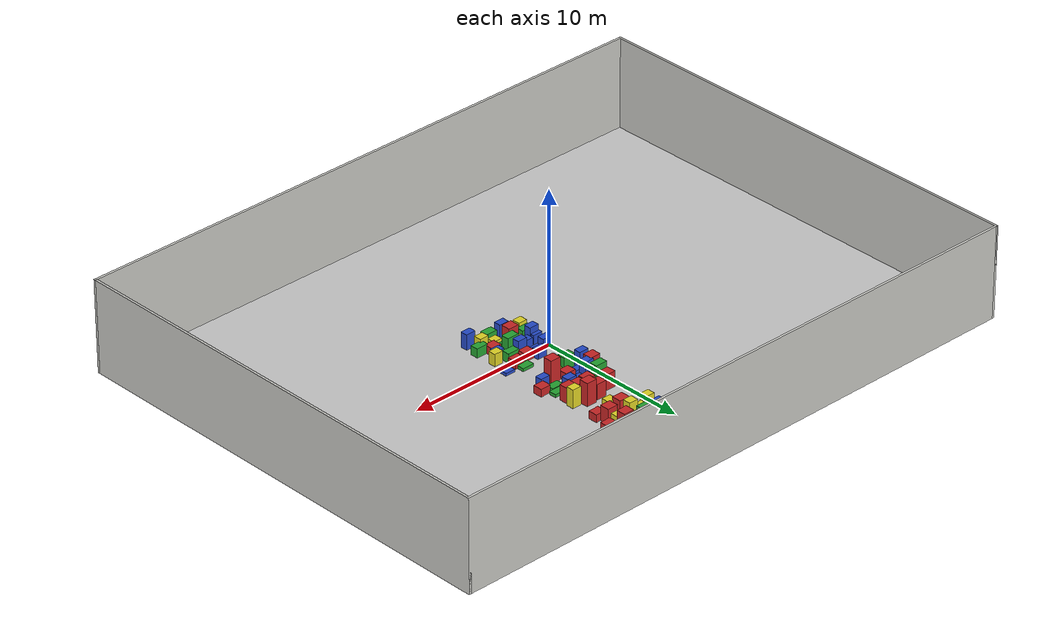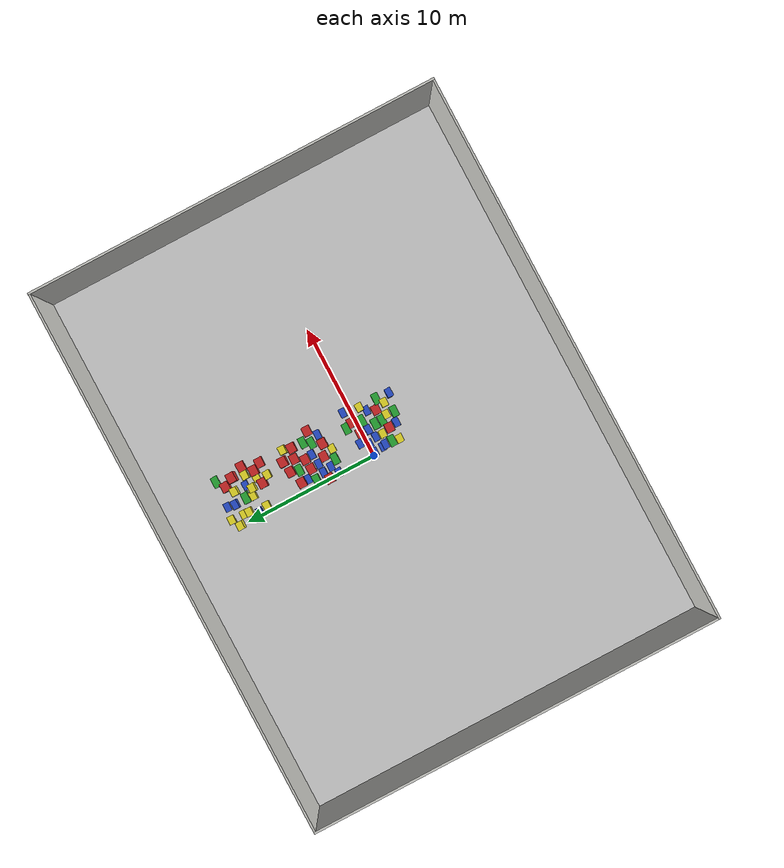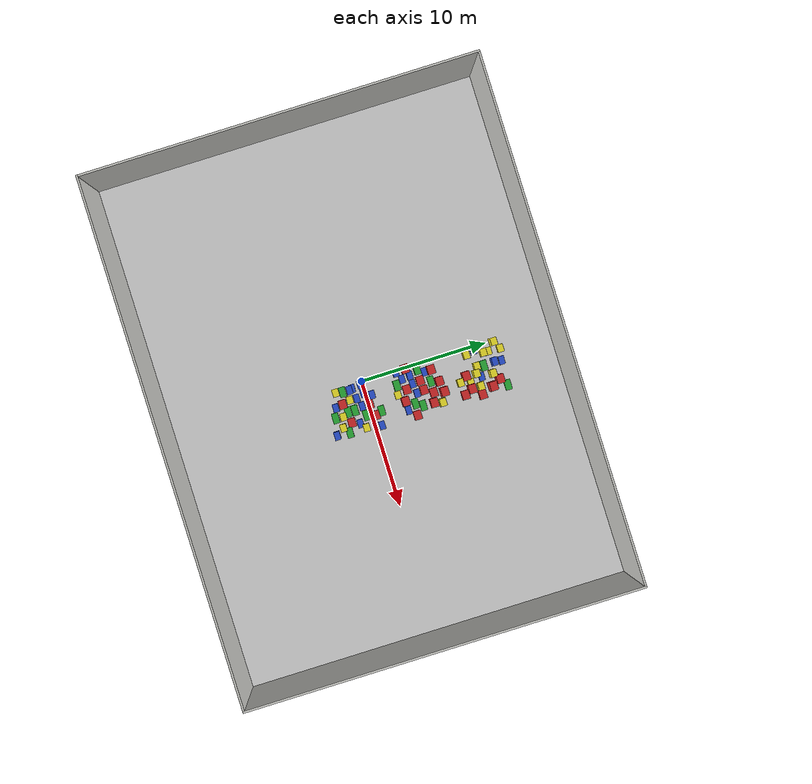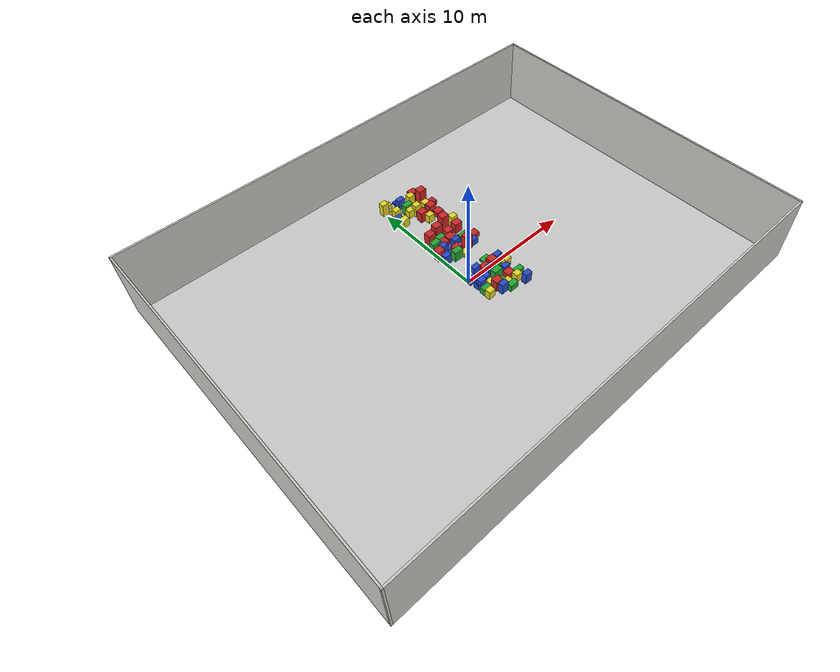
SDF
<sdf version="1.6">
 <world name="default">
  <model name="factory_floor">
   <static>1</static>
   <link name="link">
    <collision name="collision">
     <geometry><plane><normal>0 0 1</normal><size>40 30</size></plane></geometry>
     <surface><friction><ode><mu>100</mu><mu2>50</mu2></ode></friction></surface>
    </collision>
    <visual name="visual">
     <cast_shadows>0</cast_shadows>
     <geometry><plane><normal>0 0 1</normal><size>40 30</size></plane></geometry>
     <material>
      <script>
       <uri>model://factory_floor/materials/scripts/factory_floor.material</uri>
       <name>FactoryFloor/Image</name>
      </script>
     </material>
    </visual>
   </link>
  </model>
  <model name="factory_outer_frame">
   <link name="Wall_0">
    <collision name="Wall_0_Collision">
     <geometry><box><size>30.15 0.15 6</size></box></geometry>
     <pose>0 0 3 0 -0 0</pose>
    </collision>
    <visual name="Wall_0_Visual">
     <pose>0 0 3 0 -0 0</pose>
     <geometry><box><size>30.15 0.15 6</size></box></geometry>
     <material>
      <script><uri>file://media/materials/scripts/gazebo.material</uri><name>Gazebo/CeilingTiled</name></script>
      <ambient>1 1 1 1</ambient>
     </material>
    </visual>
    <pose>20 0 0 0 0 -1.5708</pose>
   </link>
   <link name="Wall_1">
    <collision name="Wall_1_Collision">
     <geometry><box><size>40.15 0.15 6</size></box></geometry>
     <pose>0 0 3 0 -0 0</pose>
    </collision>
    <visual name="Wall_1_Visual">
     <pose>0 0 3 0 -0 0</pose>
     <geometry><box><size>40.15 0.15 6</size></box></geometry>
     <material>
      <script><uri>file://media/materials/scripts/gazebo.material</uri><name>Gazebo/CeilingTiled</name></script>
      <ambient>1 1 1 1</ambient>
     </material>
    </visual>
    <pose>0 -15 0 0 -0 3.14159</pose>
   </link>
   <link name="Wall_2">
    <collision name="Wall_2_Collision">
     <geometry><box><size>30.15 0.15 6</size></box></geometry>
     <pose>0 0 3 0 -0 0</pose>
    </collision>
    <visual name="Wall_2_Visual">
     <pose>0 0 3 0 -0 0</pose>
     <geometry><box><size>30.15 0.15 6</size></box></geometry>
     <material>
      <script><uri>file://media/materials/scripts/gazebo.material</uri><name>Gazebo/CeilingTiled</name></script>
      <ambient>1 1 1 1</ambient>
     </material>
    </visual>
    <pose>-20 0 0 0 -0 1.5708</pose>
   </link>
   <link name="Wall_3">
    <collision name="Wall_3_Collision">
     <geometry><box><size>40.15 0.15 6</size></box></geometry>
     <pose>0 0 3 0 -0 0</pose>
    </collision>
    <visual name="Wall_3_Visual">
     <pose>0 0 3 0 -0 0</pose>
     <geometry><box><size>40.15 0.15 6</size></box></geometry>
     <material>
      <script><uri>file://media/materials/scripts/gazebo.material</uri><name>Gazebo/CeilingTiled</name></script>
      <ambient>1 1 1 1</ambient>
     </material>
    </visual>
    <pose>0 15 0 0 -0 0</pose>
   </link>
   <static>1</static>
  </model>
  <model name="baggage_A_0.5_clone_4">
   <pose>3.35624 7.32491 0.250063 0 -0 0</pose>
   <static>1</static>
   <link name="baggage_A_0.5::link">
    <collision name="collision"><geometry><box><size>0.7 0.6 0.5</size></box></geometry></collision>
    <visual name="visual">
     <geometry><box><size>0.7 0.6 0.5</size></box></geometry>
     <material>
      <script><uri>file://media/materials/scripts/gazebo.material</uri><name>Gazebo/Red</name></script>
     </material>
    </visual>
   </link>
  </model>
  <model name="baggage_A_0.5_clone_13">
   <pose>2.43636 5.05285 0.250044 0 -0 0</pose>
   <static>1</static>
   <link name="baggage_A_0.5::link">
    <collision name="collision"><geometry><box><size>0.7 0.6 0.5</size></box></geometry></collision>
    <visual name="visual">
     <geometry><box><size>0.7 0.6 0.5</size></box></geometry>
     <material>
      <script><uri>file://media/materials/scripts/gazebo.material</uri><name>Gazebo/Red</name></script>
     </material>
    </visual>
   </link>
  </model>
  <model name="baggage_A_0.5_clone_17">
   <pose>1.86196 0.098093 0.249707 0 -0 0</pose>
   <static>1</static>
   <link name="baggage_A_0.5::link">
    <collision name="collision"><geometry><box><size>0.7 0.6 0.5</size></box></geometry></collision>
    <visual name="visual">
     <geometry><box><size>0.7 0.6 0.5</size></box></geometry>
     <material>
      <script><uri>file://media/materials/scripts/gazebo.material</uri><name>Gazebo/Red</name></script>
     </material>
    </visual>
   </link>
  </model>
  <model name="baggage_A_0.5_clone_22">
   <pose>2.04116 4.39802 0.24978 0 -0 0</pose>
   <static>1</static>
   <link name="baggage_A_0.5::link">
    <collision name="collision"><geometry><box><size>0.7 0.6 0.5</size></box></geometry></collision>
    <visual name="visual">
     <geometry><box><size>0.7 0.6 0.5</size></box></geometry>
     <material>
      <script><uri>file://media/materials/scripts/gazebo.material</uri><name>Gazebo/Red</name></script>
     </material>
    </visual>
   </link>
  </model>
  <model name="baggage_A_0.5_clone_29">
   <pose>2.80038 -1.61448 0.249803 0 -0 0</pose>
   <static>1</static>
   <link name="baggage_A_0.5::link">
    <collision name="collision"><geometry><box><size>0.7 0.6 0.5</size></box></geometry></collision>
    <visual name="visual">
     <geometry><box><size>0.7 0.6 0.5</size></box></geometry>
     <material>
      <script><uri>file://media/materials/scripts/gazebo.material</uri><name>Gazebo/Red</name></script>
     </material>
    </visual>
   </link>
  </model>
  <model name="baggage_A_0.5_clone_36">
   <pose>3.74295 3.35884 0.250092 0 -0 0</pose>
   <static>1</static>
   <link name="baggage_A_0.5::link">
    <collision name="collision"><geometry><box><size>0.7 0.6 0.5</size></box></geometry></collision>
    <visual name="visual">
     <geometry><box><size>0.7 0.6 0.5</size></box></geometry>
     <material>
      <script><uri>file://media/materials/scripts/gazebo.material</uri><name>Gazebo/Red</name></script>
     </material>
    </visual>
   </link>
  </model>
  <model name="baggage_A_0.5_clone_39">
   <pose>3.70914 8.5983 0.249886 0 -0 0</pose>
   <static>1</static>
   <link name="baggage_A_0.5::link">
    <collision name="collision"><geometry><box><size>0.7 0.6 0.5</size></box></geometry></collision>
    <visual name="visual">
     <geometry><box><size>0.7 0.6 0.5</size></box></geometry>
     <material>
      <script><uri>file://media/materials/scripts/gazebo.material</uri><name>Gazebo/Red</name></script>
     </material>
    </visual>
   </link>
  </model>
  <model name="baggage_A_0.5_clone_46">
   <pose>2.79553 0.301072 0.250117 0 -0 0</pose>
   <static>1</static>
   <link name="baggage_A_0.5::link">
    <collision name="collision"><geometry><box><size>0.7 0.6 0.5</size></box></geometry></collision>
    <visual name="visual">
     <geometry><box><size>0.7 0.6 0.5</size></box></geometry>
     <material>
      <script><uri>file://media/materials/scripts/gazebo.material</uri><name>Gazebo/Red</name></script>
     </material>
    </visual>
   </link>
  </model>
  <model name="baggage_A_0.5_clone_47">
   <pose>1.26699 4.31966 0.249949 0 -0 0</pose>
   <static>1</static>
   <link name="baggage_A_0.5::link">
    <collision name="collision"><geometry><box><size>0.7 0.6 0.5</size></box></geometry></collision>
    <visual name="visual">
     <geometry><box><size>0.7 0.6 0.5</size></box></geometry>
     <material>
      <script><uri>file://media/materials/scripts/gazebo.material</uri><name>Gazebo/Red</name></script>
     </material>
    </visual>
   </link>
  </model>
  <model name="baggage_A_0.5_clone_48">
   <pose>1.62736 3.14012 0.249833 0 -0 0</pose>
   <static>1</static>
   <link name="baggage_A_0.5::link">
    <collision name="collision"><geometry><box><size>0.7 0.6 0.5</size></box></geometry></collision>
    <visual name="visual">
     <geometry><box><size>0.7 0.6 0.5</size></box></geometry>
     <material>
      <script><uri>file://media/materials/scripts/gazebo.material</uri><name>Gazebo/Red</name></script>
     </material>
    </visual>
   </link>
  </model>
  <model name="baggage_A_1.0_clone_5">
   <pose>0.71214 5.33384 0.499935 0 -0 0</pose>
   <static>1</static>
   <link name="baggage_A_1.0::link">
    <collision name="collision"><geometry><box><size>0.7 0.6 1</size></box></geometry></collision>
    <visual name="visual">
     <geometry><box><size>0.7 0.6 1</size></box></geometry>
     <material>
      <script><uri>file://media/materials/scripts/gazebo.material</uri><name>Gazebo/Red</name></script>
     </material>
    </visual>
   </link>
  </model>
  <model name="baggage_A_1.0_clone_10">
   <pose>2.94014 10.1656 0.499822 0 -0 0</pose>
   <static>1</static>
   <link name="baggage_A_1.0::link">
    <collision name="collision"><geometry><box><size>0.7 0.6 1</size></box></geometry></collision>
    <visual name="visual">
     <geometry><box><size>0.7 0.6 1</size></box></geometry>
     <material>
      <script><uri>file://media/materials/scripts/gazebo.material</uri><name>Gazebo/Red</name></script>
     </material>
    </visual>
   </link>
  </model>
  <model name="baggage_A_1.0_clone_17">
   <pose>1.25002 -1.87093 0.500061 0 -0 0</pose>
   <static>1</static>
   <link name="baggage_A_1.0::link">
    <collision name="collision"><geometry><box><size>0.7 0.6 1</size></box></geometry></collision>
    <visual name="visual">
     <geometry><box><size>0.7 0.6 1</size></box></geometry>
     <material>
      <script><uri>file://media/materials/scripts/gazebo.material</uri><name>Gazebo/Red</name></script>
     </material>
    </visual>
   </link>
  </model>
  <model name="baggage_A_1.0_clone_23">
   <pose>0.06114 3.45408 0.500435 0 -0 0</pose>
   <static>1</static>
   <link name="baggage_A_1.0::link">
    <collision name="collision"><geometry><box><size>0.7 0.6 1</size></box></geometry></collision>
    <visual name="visual">
     <geometry><box><size>0.7 0.6 1</size></box></geometry>
     <material>
      <script><uri>file://media/materials/scripts/gazebo.material</uri><name>Gazebo/Red</name></script>
     </material>
    </visual>
   </link>
  </model>
  <model name="baggage_A_1.0_clone_26">
   <pose>1.74765 5.68835 0.500125 0 -0 0</pose>
   <static>1</static>
   <link name="baggage_A_1.0::link">
    <collision name="collision"><geometry><box><size>0.7 0.6 1</size></box></geometry></collision>
    <visual name="visual">
     <geometry><box><size>0.7 0.6 1</size></box></geometry>
     <material>
      <script><uri>file://media/materials/scripts/gazebo.material</uri><name>Gazebo/Red</name></script>
     </material>
    </visual>
   </link>
  </model>
  <model name="baggage_A_1.0_clone_36">
   <pose>1.97881 7.75334 0.500264 0 -0 0</pose>
   <static>1</static>
   <link name="baggage_A_1.0::link">
    <collision name="collision"><geometry><box><size>0.7 0.6 1</size></box></geometry></collision>
    <visual name="visual">
     <geometry><box><size>0.7 0.6 1</size></box></geometry>
     <material>
      <script><uri>file://media/materials/scripts/gazebo.material</uri><name>Gazebo/Red</name></script>
     </material>
    </visual>
   </link>
  </model>
  <model name="baggage_A_1.0_clone_45">
   <pose>3.04647 7.9173 0.499799 0 -0 0</pose>
   <static>1</static>
   <link name="baggage_A_1.0::link">
    <collision name="collision"><geometry><box><size>0.7 0.6 1</size></box></geometry></collision>
    <visual name="visual">
     <geometry><box><size>0.7 0.6 1</size></box></geometry>
     <material>
      <script><uri>file://media/materials/scripts/gazebo.material</uri><name>Gazebo/Red</name></script>
     </material>
    </visual>
   </link>
  </model>
  <model name="baggage_A_1.0_clone_49">
   <pose>3.18946 4.84223 0.500182 0 -0 0</pose>
   <static>1</static>
   <link name="baggage_A_1.0::link">
    <collision name="collision"><geometry><box><size>0.7 0.6 1</size></box></geometry></collision>
    <visual name="visual">
     <geometry><box><size>0.7 0.6 1</size></box></geometry>
     <material>
      <script><uri>file://media/materials/scripts/gazebo.material</uri><name>Gazebo/Red</name></script>
     </material>
    </visual>
   </link>
  </model>
  <model name="baggage_A_1.5_clone_5">
   <pose>2.5968 5.81041 0.749844 0 -0 0</pose>
   <static>1</static>
   <link name="baggage_A_1.5::link">
    <collision name="collision"><geometry><box><size>0.7 0.6 1.5</size></box></geometry></collision>
    <visual name="visual">
     <geometry><box><size>0.7 0.6 1.5</size></box></geometry>
     <material>
      <script><uri>file://media/materials/scripts/gazebo.material</uri><name>Gazebo/Red</name></script>
     </material>
    </visual>
   </link>
  </model>
  <model name="baggage_A_1.5_clone_12">
   <pose>2.44019 2.77564 0.7504 0 -0 0</pose>
   <static>1</static>
   <link name="baggage_A_1.5::link">
    <collision name="collision"><geometry><box><size>0.7 0.6 1.5</size></box></geometry></collision>
    <visual name="visual">
     <geometry><box><size>0.7 0.6 1.5</size></box></geometry>
     <material>
      <script><uri>file://media/materials/scripts/gazebo.material</uri><name>Gazebo/Red</name></script>
     </material>
    </visual>
   </link>
  </model>
  <model name="baggage_A_1.5_clone_18">
   <pose>3.30674 9.46713 0.749838 0 -0 0</pose>
   <static>1</static>
   <link name="baggage_A_1.5::link">
    <collision name="collision"><geometry><box><size>0.7 0.6 1.5</size></box></geometry></collision>
    <visual name="visual">
     <geometry><box><size>0.7 0.6 1.5</size></box></geometry>
     <material>
      <script><uri>file://media/materials/scripts/gazebo.material</uri><name>Gazebo/Red</name></script>
     </material>
    </visual>
   </link>
  </model>
  <model name="baggage_B_0.2_clone_0">
   <pose>3.69007 0.538933 0.099921 0 -0 0</pose>
   <static>1</static>
   <link name="baggage_B_0.2::link">
    <collision name="collision"><geometry><box><size>0.65 0.45 0.2</size></box></geometry></collision>
    <visual name="visual">
     <geometry><box><size>0.65 0.45 0.2</size></box></geometry>
     <material>
      <script><uri>file://media/materials/scripts/gazebo.material</uri><name>Gazebo/Blue</name></script>
     </material>
    </visual>
   </link>
  </model>
  <model name="baggage_B_0.2_clone_22">
   <pose>0.901034 -0.122514 0.100338 0 -0 0</pose>
   <static>1</static>
   <link name="baggage_B_0.2::link">
    <collision name="collision"><geometry><box><size>0.65 0.45 0.2</size></box></geometry></collision>
    <visual name="visual">
     <geometry><box><size>0.65 0.45 0.2</size></box></geometry>
     <material>
      <script><uri>file://media/materials/scripts/gazebo.material</uri><name>Gazebo/Blue</name></script>
     </material>
    </visual>
   </link>
  </model>
  <model name="baggage_B_0.2_clone_36">
   <pose>1.64019 10.7664 0.099628 0 -0 0</pose>
   <static>1</static>
   <link name="baggage_B_0.2::link">
    <collision name="collision"><geometry><box><size>0.65 0.45 0.2</size></box></geometry></collision>
    <visual name="visual">
     <geometry><box><size>0.65 0.45 0.2</size></box></geometry>
     <material>
      <script><uri>file://media/materials/scripts/gazebo.material</uri><name>Gazebo/Blue</name></script>
     </material>
    </visual>
   </link>
  </model>
  <model name="baggage_B_0.2_clone_39">
   <pose>2.39021 8.93044 0.099926 0 -0 0</pose>
   <static>1</static>
   <link name="baggage_B_0.2::link">
    <collision name="collision"><geometry><box><size>0.65 0.45 0.2</size></box></geometry></collision>
    <visual name="visual">
     <geometry><box><size>0.65 0.45 0.2</size></box></geometry>
     <material>
      <script><uri>file://media/materials/scripts/gazebo.material</uri><name>Gazebo/Blue</name></script>
     </material>
    </visual>
   </link>
  </model>
  <model name="baggage_B_0.2_clone_40">
   <pose>1.33626 3.70292 0.100157 0 -0 0</pose>
   <static>1</static>
   <link name="baggage_B_0.2::link">
    <collision name="collision"><geometry><box><size>0.65 0.45 0.2</size></box></geometry></collision>
    <visual name="visual">
     <geometry><box><size>0.65 0.45 0.2</size></box></geometry>
     <material>
      <script><uri>file://media/materials/scripts/gazebo.material</uri><name>Gazebo/Blue</name></script>
     </material>
    </visual>
   </link>
  </model>
  <model name="baggage_B_0.2_clone_47">
   <pose>0.767607 3.03085 0.100015 0 -0 0</pose>
   <static>1</static>
   <link name="baggage_B_0.2::link">
    <collision name="collision"><geometry><box><size>0.65 0.45 0.2</size></box></geometry></collision>
    <visual name="visual">
     <geometry><box><size>0.65 0.45 0.2</size></box></geometry>
     <material>
      <script><uri>file://media/materials/scripts/gazebo.material</uri><name>Gazebo/Blue</name></script>
     </material>
    </visual>
   </link>
  </model>
  <model name="baggage_B_0.2_clone_49">
   <pose>0.722521 4.83538 0.099504 0 -0 0</pose>
   <static>1</static>
   <link name="baggage_B_0.2::link">
    <collision name="collision"><geometry><box><size>0.65 0.45 0.2</size></box></geometry></collision>
    <visual name="visual">
     <geometry><box><size>0.65 0.45 0.2</size></box></geometry>
     <material>
      <script><uri>file://media/materials/scripts/gazebo.material</uri><name>Gazebo/Blue</name></script>
     </material>
    </visual>
   </link>
  </model>
  <model name="baggage_B_0.6_clone_3">
   <pose>0.308524 -0.839967 0.299547 0 -0 0</pose>
   <static>1</static>
   <link name="baggage_B_0.6::link">
    <collision name="collision"><geometry><box><size>0.65 0.45 0.6</size></box></geometry></collision>
    <visual name="visual">
     <geometry><box><size>0.65 0.45 0.6</size></box></geometry>
     <material>
      <script><uri>file://media/materials/scripts/gazebo.material</uri><name>Gazebo/Blue</name></script>
     </material>
    </visual>
   </link>
  </model>
  <model name="baggage_B_0.6_clone_4">
   <pose>1.21165 0.481628 0.299541 0 -0 0</pose>
   <static>1</static>
   <link name="baggage_B_0.6::link">
    <collision name="collision"><geometry><box><size>0.65 0.45 0.6</size></box></geometry></collision>
    <visual name="visual">
     <geometry><box><size>0.65 0.45 0.6</size></box></geometry>
     <material>
      <script><uri>file://media/materials/scripts/gazebo.material</uri><name>Gazebo/Blue</name></script>
     </material>
    </visual>
   </link>
  </model>
  <model name="baggage_B_0.6_clone_6">
   <pose>3.1779 2.80451 0.29976 0 -0 0</pose>
   <static>1</static>
   <link name="baggage_B_0.6::link">
    <collision name="collision"><geometry><box><size>0.65 0.45 0.6</size></box></geometry></collision>
    <visual name="visual">
     <geometry><box><size>0.65 0.45 0.6</size></box></geometry>
     <material>
      <script><uri>file://media/materials/scripts/gazebo.material</uri><name>Gazebo/Blue</name></script>
     </material>
    </visual>
   </link>
  </model>
  <model name="baggage_B_0.6_clone_13">
   <pose>0.198422 -0.168142 0.299642 0 -0 0</pose>
   <static>1</static>
   <link name="baggage_B_0.6::link">
    <collision name="collision"><geometry><box><size>0.65 0.45 0.6</size></box></geometry></collision>
    <visual name="visual">
     <geometry><box><size>0.65 0.45 0.6</size></box></geometry>
     <material>
      <script><uri>file://media/materials/scripts/gazebo.material</uri><name>Gazebo/Blue</name></script>
     </material>
    </visual>
   </link>
  </model>
  <model name="baggage_B_0.6_clone_15">
   <pose>3.04885 -1.00915 0.300175 0 -0 0</pose>
   <static>1</static>
   <link name="baggage_B_0.6::link">
    <collision name="collision"><geometry><box><size>0.65 0.45 0.6</size></box></geometry></collision>
    <visual name="visual">
     <geometry><box><size>0.65 0.45 0.6</size></box></geometry>
     <material>
      <script><uri>file://media/materials/scripts/gazebo.material</uri><name>Gazebo/Blue</name></script>
     </material>
    </visual>
   </link>
  </model>
  <model name="baggage_B_0.6_clone_30">
   <pose>2.12523 3.80475 0.300116 0 -0 0</pose>
   <static>1</static>
   <link name="baggage_B_0.6::link">
    <collision name="collision"><geometry><box><size>0.65 0.45 0.6</size></box></geometry></collision>
    <visual name="visual">
     <geometry><box><size>0.65 0.45 0.6</size></box></geometry>
     <material>
      <script><uri>file://media/materials/scripts/gazebo.material</uri><name>Gazebo/Blue</name></script>
     </material>
    </visual>
   </link>
  </model>
  <model name="baggage_B_0.6_clone_37">
   <pose>0.271629 8.88692 0.300487 0 -0 0</pose>
   <static>1</static>
   <link name="baggage_B_0.6::link">
    <collision name="collision"><geometry><box><size>0.65 0.45 0.6</size></box></geometry></collision>
    <visual name="visual">
     <geometry><box><size>0.65 0.45 0.6</size></box></geometry>
     <material>
      <script><uri>file://media/materials/scripts/gazebo.material</uri><name>Gazebo/Blue</name></script>
     </material>
    </visual>
   </link>
  </model>
  <model name="baggage_B_0.6_clone_42">
   <pose>1.13132 -0.723509 0.29999 0 -0 0</pose>
   <static>1</static>
   <link name="baggage_B_0.6::link">
    <collision name="collision"><geometry><box><size>0.65 0.45 0.6</size></box></geometry></collision>
    <visual name="visual">
     <geometry><box><size>0.65 0.45 0.6</size></box></geometry>
     <material>
      <script><uri>file://media/materials/scripts/gazebo.material</uri><name>Gazebo/Blue</name></script>
     </material>
    </visual>
   </link>
  </model>
  <model name="baggage_B_1.0_clone_12">
   <pose>1.8064 -0.497238 0.500142 0 -0 0</pose>
   <static>1</static>
   <link name="baggage_B_1.0::link">
    <collision name="collision"><geometry><box><size>0.65 0.45 1</size></box></geometry></collision>
    <visual name="visual">
     <geometry><box><size>0.65 0.45 1</size></box></geometry>
     <material>
      <script><uri>file://media/materials/scripts/gazebo.material</uri><name>Gazebo/Blue</name></script>
     </material>
    </visual>
   </link>
  </model>
  <model name="baggage_B_1.0_clone_16">
   <pose>3.41289 -2.97147 0.49999 0 -0 0</pose>
   <static>1</static>
   <link name="baggage_B_1.0::link">
    <collision name="collision"><geometry><box><size>0.65 0.45 1</size></box></geometry></collision>
    <visual name="visual">
     <geometry><box><size>0.65 0.45 1</size></box></geometry>
     <material>
      <script><uri>file://media/materials/scripts/gazebo.material</uri><name>Gazebo/Blue</name></script>
     </material>
    </visual>
   </link>
  </model>
  <model name="baggage_B_1.0_clone_27">
   <pose>0.133151 2.69036 0.500155 0 -0 0</pose>
   <static>1</static>
   <link name="baggage_B_1.0::link">
    <collision name="collision"><geometry><box><size>0.65 0.45 1</size></box></geometry></collision>
    <visual name="visual">
     <geometry><box><size>0.65 0.45 1</size></box></geometry>
     <material>
      <script><uri>file://media/materials/scripts/gazebo.material</uri><name>Gazebo/Blue</name></script>
     </material>
    </visual>
   </link>
  </model>
  <model name="baggage_B_1.0_clone_29">
   <pose>0.366062 -1.06866 0.499624 0 -0 0</pose>
   <static>1</static>
   <link name="baggage_B_1.0::link">
    <collision name="collision"><geometry><box><size>0.65 0.45 1</size></box></geometry></collision>
    <visual name="visual">
     <geometry><box><size>0.65 0.45 1</size></box></geometry>
     <material>
      <script><uri>file://media/materials/scripts/gazebo.material</uri><name>Gazebo/Blue</name></script>
     </material>
    </visual>
   </link>
  </model>
  <model name="baggage_B_1.0_clone_32">
   <pose>1.35822 -2.45377 0.500012 0 -0 0</pose>
   <static>1</static>
   <link name="baggage_B_1.0::link">
    <collision name="collision"><geometry><box><size>0.65 0.45 1</size></box></geometry></collision>
    <visual name="visual">
     <geometry><box><size>0.65 0.45 1</size></box></geometry>
     <material>
      <script><uri>file://media/materials/scripts/gazebo.material</uri><name>Gazebo/Blue</name></script>
     </material>
    </visual>
   </link>
  </model>
  <model name="baggage_B_1.0_clone_38">
   <pose>1.55013 10.1487 0.499581 0 -0 0</pose>
   <static>1</static>
   <link name="baggage_B_1.0::link">
    <collision name="collision"><geometry><box><size>0.65 0.45 1</size></box></geometry></collision>
    <visual name="visual">
     <geometry><box><size>0.65 0.45 1</size></box></geometry>
     <material>
      <script><uri>file://media/materials/scripts/gazebo.material</uri><name>Gazebo/Blue</name></script>
     </material>
    </visual>
   </link>
  </model>
  <model name="baggage_B_1.0_clone_48">
   <pose>0.643648 3.64885 0.500053 0 -0 0</pose>
   <static>1</static>
   <link name="baggage_B_1.0::link">
    <collision name="collision"><geometry><box><size>0.65 0.45 1</size></box></geometry></collision>
    <visual name="visual">
     <geometry><box><size>0.65 0.45 1</size></box></geometry>
     <material>
      <script><uri>file://media/materials/scripts/gazebo.material</uri><name>Gazebo/Blue</name></script>
     </material>
    </visual>
   </link>
  </model>
  <model name="baggage_C_0.4_clone_0">
   <pose>0.67024 9.97166 0.199519 0 -0 0</pose>
   <static>1</static>
   <link name="baggage_C_0.4::link">
    <collision name="collision"><geometry><box><size>0.6 0.5 0.4</size></box></geometry></collision>
    <visual name="visual">
     <geometry><box><size>0.6 0.5 0.4</size></box></geometry>
     <material>
      <script><uri>file://media/materials/scripts/gazebo.material</uri><name>Gazebo/Yellow</name></script>
     </material>
    </visual>
   </link>
  </model>
  <model name="baggage_C_0.4_clone_6">
   <pose>2.5571 8.00022 0.200219 0 -0 0</pose>
   <static>1</static>
   <link name="baggage_C_0.4::link">
    <collision name="collision"><geometry><box><size>0.6 0.5 0.4</size></box></geometry></collision>
    <visual name="visual">
     <geometry><box><size>0.6 0.5 0.4</size></box></geometry>
     <material>
      <script><uri>file://media/materials/scripts/gazebo.material</uri><name>Gazebo/Yellow</name></script>
     </material>
    </visual>
   </link>
  </model>
  <model name="baggage_C_0.4_clone_8">
   <pose>1.0985 -1.26565 0.200424 0 -0 0</pose>
   <static>1</static>
   <link name="baggage_C_0.4::link">
    <collision name="collision"><geometry><box><size>0.6 0.5 0.4</size></box></geometry></collision>
    <visual name="visual">
     <geometry><box><size>0.6 0.5 0.4</size></box></geometry>
     <material>
      <script><uri>file://media/materials/scripts/gazebo.material</uri><name>Gazebo/Yellow</name></script>
     </material>
    </visual>
   </link>
  </model>
  <model name="baggage_C_0.4_clone_12">
   <pose>1.83663 2.37332 0.199895 0 -0 0</pose>
   <static>1</static>
   <link name="baggage_C_0.4::link">
    <collision name="collision"><geometry><box><size>0.6 0.5 0.4</size></box></geometry></collision>
    <visual name="visual">
     <geometry><box><size>0.6 0.5 0.4</size></box></geometry>
     <material>
      <script><uri>file://media/materials/scripts/gazebo.material</uri><name>Gazebo/Yellow</name></script>
     </material>
    </visual>
   </link>
  </model>
  <model name="baggage_C_0.4_clone_13">
   <pose>2.18545 -2.1151 0.200014 0 -0 0</pose>
   <static>1</static>
   <link name="baggage_C_0.4::link">
    <collision name="collision"><geometry><box><size>0.6 0.5 0.4</size></box></geometry></collision>
    <visual name="visual">
     <geometry><box><size>0.6 0.5 0.4</size></box></geometry>
     <material>
      <script><uri>file://media/materials/scripts/gazebo.material</uri><name>Gazebo/Yellow</name></script>
     </material>
    </visual>
   </link>
  </model>
  <model name="baggage_C_0.4_clone_37">
   <pose>0.721212 10.9146 0.199671 0 -0 0</pose>
   <static>1</static>
   <link name="baggage_C_0.4::link">
    <collision name="collision"><geometry><box><size>0.6 0.5 0.4</size></box></geometry></collision>
    <visual name="visual">
     <geometry><box><size>0.6 0.5 0.4</size></box></geometry>
     <material>
      <script><uri>file://media/materials/scripts/gazebo.material</uri><name>Gazebo/Yellow</name></script>
     </material>
    </visual>
   </link>
  </model>
  <model name="baggage_C_0.4_clone_39">
   <pose>3.69611 8.5958 0.200462 0 -0 0</pose>
   <static>1</static>
   <link name="baggage_C_0.4::link">
    <collision name="collision"><geometry><box><size>0.6 0.5 0.4</size></box></geometry></collision>
    <visual name="visual">
     <geometry><box><size>0.6 0.5 0.4</size></box></geometry>
     <material>
      <script><uri>file://media/materials/scripts/gazebo.material</uri><name>Gazebo/Yellow</name></script>
     </material>
    </visual>
   </link>
  </model>
  <model name="baggage_C_0.8_clone_2">
   <pose>0.251174 -2.13466 0.399809 0 -0 0</pose>
   <static>1</static>
   <link name="baggage_C_0.8::link">
    <collision name="collision"><geometry><box><size>0.6 0.5 0.8</size></box></geometry></collision>
    <visual name="visual">
     <geometry><box><size>0.6 0.5 0.8</size></box></geometry>
     <material>
      <script><uri>file://media/materials/scripts/gazebo.material</uri><name>Gazebo/Yellow</name></script>
     </material>
    </visual>
   </link>
  </model>
  <model name="baggage_C_0.8_clone_12">
   <pose>1.49957 8.77355 0.400255 0 -0 0</pose>
   <static>1</static>
   <link name="baggage_C_0.8::link">
    <collision name="collision"><geometry><box><size>0.6 0.5 0.8</size></box></geometry></collision>
    <visual name="visual">
     <geometry><box><size>0.6 0.5 0.8</size></box></geometry>
     <material>
      <script><uri>file://media/materials/scripts/gazebo.material</uri><name>Gazebo/Yellow</name></script>
     </material>
    </visual>
   </link>
  </model>
  <model name="baggage_C_0.8_clone_16">
   <pose>3.04707 8.63248 0.400328 0 -0 0</pose>
   <static>1</static>
   <link name="baggage_C_0.8::link">
    <collision name="collision"><geometry><box><size>0.6 0.5 0.8</size></box></geometry></collision>
    <visual name="visual">
     <geometry><box><size>0.6 0.5 0.8</size></box></geometry>
     <material>
      <script><uri>file://media/materials/scripts/gazebo.material</uri><name>Gazebo/Yellow</name></script>
     </material>
    </visual>
   </link>
  </model>
  <model name="baggage_C_0.8_clone_17">
   <pose>2.98237 -2.35114 0.399738 0 -0 0</pose>
   <static>1</static>
   <link name="baggage_C_0.8::link">
    <collision name="collision"><geometry><box><size>0.6 0.5 0.8</size></box></geometry></collision>
    <visual name="visual">
     <geometry><box><size>0.6 0.5 0.8</size></box></geometry>
     <material>
      <script><uri>file://media/materials/scripts/gazebo.material</uri><name>Gazebo/Yellow</name></script>
     </material>
    </visual>
   </link>
  </model>
  <model name="baggage_C_0.8_clone_23">
   <pose>3.48413 -0.650264 0.399701 0 -0 0</pose>
   <static>1</static>
   <link name="baggage_C_0.8::link">
    <collision name="collision"><geometry><box><size>0.6 0.5 0.8</size></box></geometry></collision>
    <visual name="visual">
     <geometry><box><size>0.6 0.5 0.8</size></box></geometry>
     <material>
      <script><uri>file://media/materials/scripts/gazebo.material</uri><name>Gazebo/Yellow</name></script>
     </material>
    </visual>
   </link>
  </model>
  <model name="baggage_C_0.8_clone_24">
   <pose>0.458139 8.24668 0.400286 0 -0 0</pose>
   <static>1</static>
   <link name="baggage_C_0.8::link">
    <collision name="collision"><geometry><box><size>0.6 0.5 0.8</size></box></geometry></collision>
    <visual name="visual">
     <geometry><box><size>0.6 0.5 0.8</size></box></geometry>
     <material>
      <script><uri>file://media/materials/scripts/gazebo.material</uri><name>Gazebo/Yellow</name></script>
     </material>
    </visual>
   </link>
  </model>
  <model name="baggage_C_0.8_clone_35">
   <pose>2.34677 7.21517 0.400317 0 -0 0</pose>
   <static>1</static>
   <link name="baggage_C_0.8::link">
    <collision name="collision"><geometry><box><size>0.6 0.5 0.8</size></box></geometry></collision>
    <visual name="visual">
     <geometry><box><size>0.6 0.5 0.8</size></box></geometry>
     <material>
      <script><uri>file://media/materials/scripts/gazebo.material</uri><name>Gazebo/Yellow</name></script>
     </material>
    </visual>
   </link>
  </model>
  <model name="baggage_C_0.8_clone_37">
   <pose>0.639687 9.54214 0.39974 0 -0 0</pose>
   <static>1</static>
   <link name="baggage_C_0.8::link">
    <collision name="collision"><geometry><box><size>0.6 0.5 0.8</size></box></geometry></collision>
    <visual name="visual">
     <geometry><box><size>0.6 0.5 0.8</size></box></geometry>
     <material>
      <script><uri>file://media/materials/scripts/gazebo.material</uri><name>Gazebo/Yellow</name></script>
     </material>
    </visual>
   </link>
  </model>
  <model name="baggage_C_1.2_clone_9">
   <pose>0.076079 10.4911 0.599693 0 -0 0</pose>
   <static>1</static>
   <link name="baggage_C_1.2::link">
    <collision name="collision"><geometry><box><size>0.6 0.5 1.2</size></box></geometry></collision>
    <visual name="visual">
     <geometry><box><size>0.6 0.5 1.2</size></box></geometry>
     <material>
      <script><uri>file://media/materials/scripts/gazebo.material</uri><name>Gazebo/Yellow</name></script>
     </material>
    </visual>
   </link>
  </model>
  <model name="baggage_C_1.2_clone_14">
   <pose>2.37341 9.76695 0.599819 0 -0 0</pose>
   <static>1</static>
   <link name="baggage_C_1.2::link">
    <collision name="collision"><geometry><box><size>0.6 0.5 1.2</size></box></geometry></collision>
    <visual name="visual">
     <geometry><box><size>0.6 0.5 1.2</size></box></geometry>
     <material>
      <script><uri>file://media/materials/scripts/gazebo.material</uri><name>Gazebo/Yellow</name></script>
     </material>
    </visual>
   </link>
  </model>
  <model name="baggage_C_1.2_clone_28">
   <pose>2.02345 8.54911 0.599903 0 -0 0</pose>
   <static>1</static>
   <link name="baggage_C_1.2::link">
    <collision name="collision"><geometry><box><size>0.6 0.5 1.2</size></box></geometry></collision>
    <visual name="visual">
     <geometry><box><size>0.6 0.5 1.2</size></box></geometry>
     <material>
      <script><uri>file://media/materials/scripts/gazebo.material</uri><name>Gazebo/Yellow</name></script>
     </material>
    </visual>
   </link>
  </model>
  <model name="baggage_C_1.2_clone_34">
   <pose>3.34933 5.46822 0.600262 0 -0 0</pose>
   <static>1</static>
   <link name="baggage_C_1.2::link">
    <collision name="collision"><geometry><box><size>0.6 0.5 1.2</size></box></geometry></collision>
    <visual name="visual">
     <geometry><box><size>0.6 0.5 1.2</size></box></geometry>
     <material>
      <script><uri>file://media/materials/scripts/gazebo.material</uri><name>Gazebo/Yellow</name></script>
     </material>
    </visual>
   </link>
  </model>
  <model name="baggage_D_0.2_clone_8">
   <pose>3.57898 10.6701 0.099856 0 -0 0</pose>
   <static>1</static>
   <link name="baggage_D_0.2::link">
    <collision name="collision"><geometry><box><size>0.8 0.5 0.2</size></box></geometry></collision>
    <visual name="visual">
     <geometry><box><size>0.8 0.5 0.2</size></box></geometry>
     <material>
      <script><uri>file://media/materials/scripts/gazebo.material</uri><name>Gazebo/Green</name></script>
     </material>
    </visual>
   </link>
  </model>
  <model name="baggage_D_0.2_clone_14">
   <pose>1.5681 5.09902 0.100451 0 -0 0</pose>
   <static>1</static>
   <link name="baggage_D_0.2::link">
    <collision name="collision"><geometry><box><size>0.8 0.5 0.2</size></box></geometry></collision>
    <visual name="visual">
     <geometry><box><size>0.8 0.5 0.2</size></box></geometry>
     <material>
      <script><uri>file://media/materials/scripts/gazebo.material</uri><name>Gazebo/Green</name></script>
     </material>
    </visual>
   </link>
  </model>
  <model name="baggage_D_0.2_clone_25">
   <pose>2.8609 3.46273 0.100219 0 -0 0</pose>
   <static>1</static>
   <link name="baggage_D_0.2::link">
    <collision name="collision"><geometry><box><size>0.8 0.5 0.2</size></box></geometry></collision>
    <visual name="visual">
     <geometry><box><size>0.8 0.5 0.2</size></box></geometry>
     <material>
      <script><uri>file://media/materials/scripts/gazebo.material</uri><name>Gazebo/Green</name></script>
     </material>
    </visual>
   </link>
  </model>
  <model name="baggage_D_0.2_clone_35">
   <pose>1.95729 -1.6682 0.100359 0 -0 0</pose>
   <static>1</static>
   <link name="baggage_D_0.2::link">
    <collision name="collision"><geometry><box><size>0.8 0.5 0.2</size></box></geometry></collision>
    <visual name="visual">
     <geometry><box><size>0.8 0.5 0.2</size></box></geometry>
     <material>
      <script><uri>file://media/materials/scripts/gazebo.material</uri><name>Gazebo/Green</name></script>
     </material>
    </visual>
   </link>
  </model>
  <model name="baggage_D_0.2_clone_42">
   <pose>3.16733 4.00028 0.100411 0 -0 0</pose>
   <static>1</static>
   <link name="baggage_D_0.2::link">
    <collision name="collision"><geometry><box><size>0.8 0.5 0.2</size></box></geometry></collision>
    <visual name="visual">
     <geometry><box><size>0.8 0.5 0.2</size></box></geometry>
     <material>
      <script><uri>file://media/materials/scripts/gazebo.material</uri><name>Gazebo/Green</name></script>
     </material>
    </visual>
   </link>
  </model>
  <model name="baggage_D_0.2_clone_46">
   <pose>2.60264 0.825864 0.100323 0 -0 0</pose>
   <static>1</static>
   <link name="baggage_D_0.2::link">
    <collision name="collision"><geometry><box><size>0.8 0.5 0.2</size></box></geometry></collision>
    <visual name="visual">
     <geometry><box><size>0.8 0.5 0.2</size></box></geometry>
     <material>
      <script><uri>file://media/materials/scripts/gazebo.material</uri><name>Gazebo/Green</name></script>
     </material>
    </visual>
   </link>
  </model>
  <model name="baggage_D_0.6_clone_23">
   <pose>0.349058 -1.61401 0.29984 0 -0 0</pose>
   <static>1</static>
   <link name="baggage_D_0.6::link">
    <collision name="collision"><geometry><box><size>0.8 0.5 0.6</size></box></geometry></collision>
    <visual name="visual">
     <geometry><box><size>0.8 0.5 0.6</size></box></geometry>
     <material>
      <script><uri>file://media/materials/scripts/gazebo.material</uri><name>Gazebo/Green</name></script>
     </material>
    </visual>
   </link>
  </model>
  <model name="baggage_D_0.6_clone_24">
   <pose>2.58241 -0.388441 0.300023 0 -0 0</pose>
   <static>1</static>
   <link name="baggage_D_0.6::link">
    <collision name="collision"><geometry><box><size>0.8 0.5 0.6</size></box></geometry></collision>
    <visual name="visual">
     <geometry><box><size>0.8 0.5 0.6</size></box></geometry>
     <material>
      <script><uri>file://media/materials/scripts/gazebo.material</uri><name>Gazebo/Green</name></script>
     </material>
    </visual>
   </link>
  </model>
  <model name="baggage_D_0.6_clone_33">
   <pose>2.10819 -2.70419 0.300221 0 -0 0</pose>
   <static>1</static>
   <link name="baggage_D_0.6::link">
    <collision name="collision"><geometry><box><size>0.8 0.5 0.6</size></box></geometry></collision>
    <visual name="visual">
     <geometry><box><size>0.8 0.5 0.6</size></box></geometry>
     <material>
      <script><uri>file://media/materials/scripts/gazebo.material</uri><name>Gazebo/Green</name></script>
     </material>
    </visual>
   </link>
  </model>
  <model name="baggage_D_0.6_clone_46">
   <pose>3.47383 -1.98751 0.300335 0 -0 0</pose>
   <static>1</static>
   <link name="baggage_D_0.6::link">
    <collision name="collision"><geometry><box><size>0.8 0.5 0.6</size></box></geometry></collision>
    <visual name="visual">
     <geometry><box><size>0.8 0.5 0.6</size></box></geometry>
     <material>
      <script><uri>file://media/materials/scripts/gazebo.material</uri><name>Gazebo/Green</name></script>
     </material>
    </visual>
   </link>
  </model>
  <model name="baggage_D_1.0_clone_13">
   <pose>1.09438 2.49522 0.499941 0 -0 0</pose>
   <static>1</static>
   <link name="baggage_D_1.0::link">
    <collision name="collision"><geometry><box><size>0.8 0.5 1</size></box></geometry></collision>
    <visual name="visual">
     <geometry><box><size>0.8 0.5 1</size></box></geometry>
     <material>
      <script><uri>file://media/materials/scripts/gazebo.material</uri><name>Gazebo/Green</name></script>
     </material>
    </visual>
   </link>
  </model>
  <model name="baggage_D_1.0_clone_35">
   <pose>0.382556 4.31612 0.500092 0 -0 0</pose>
   <static>1</static>
   <link name="baggage_D_1.0::link">
    <collision name="collision"><geometry><box><size>0.8 0.5 1</size></box></geometry></collision>
    <visual name="visual">
     <geometry><box><size>0.8 0.5 1</size></box></geometry>
     <material>
      <script><uri>file://media/materials/scripts/gazebo.material</uri><name>Gazebo/Green</name></script>
     </material>
    </visual>
   </link>
  </model>
  <model name="baggage_D_1.0_clone_40">
   <pose>1.60513 9.25597 0.499946 0 -0 0</pose>
   <static>1</static>
   <link name="baggage_D_1.0::link">
    <collision name="collision"><geometry><box><size>0.8 0.5 1</size></box></geometry></collision>
    <visual name="visual">
     <geometry><box><size>0.8 0.5 1</size></box></geometry>
     <material>
      <script><uri>file://media/materials/scripts/gazebo.material</uri><name>Gazebo/Green</name></script>
     </material>
    </visual>
   </link>
  </model>
  <model name="baggage_D_1.0_clone_41">
   <pose>1.94851 -1.11535 0.500027 0 -0 0</pose>
   <static>1</static>
   <link name="baggage_D_1.0::link">
    <collision name="collision"><geometry><box><size>0.8 0.5 1</size></box></geometry></collision>
    <visual name="visual">
     <geometry><box><size>0.8 0.5 1</size></box></geometry>
     <material>
      <script><uri>file://media/materials/scripts/gazebo.material</uri><name>Gazebo/Green</name></script>
     </material>
    </visual>
   </link>
  </model>
 </world>
</sdf>
